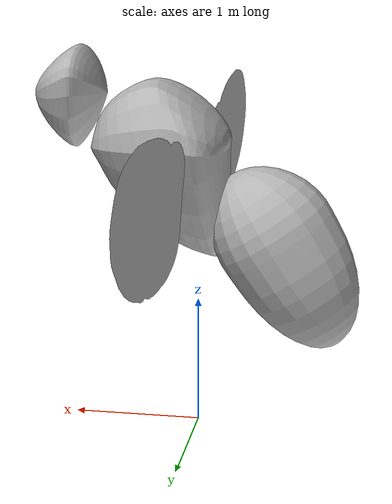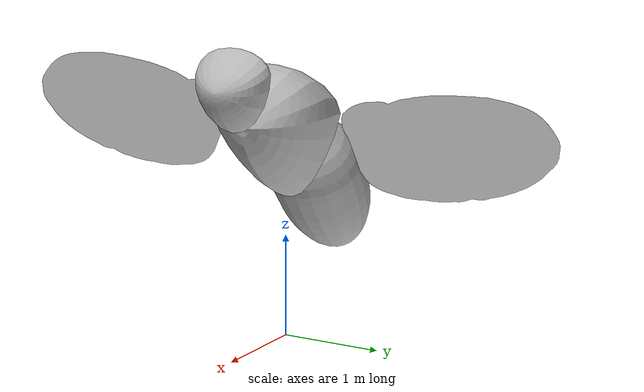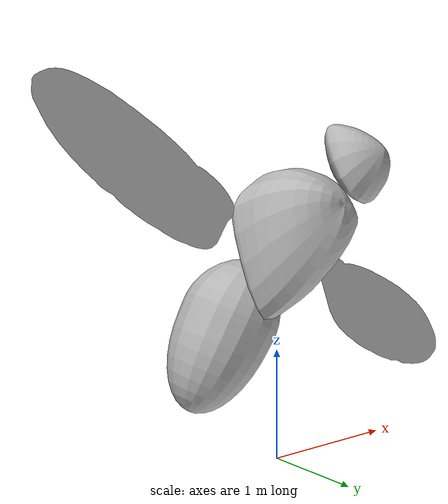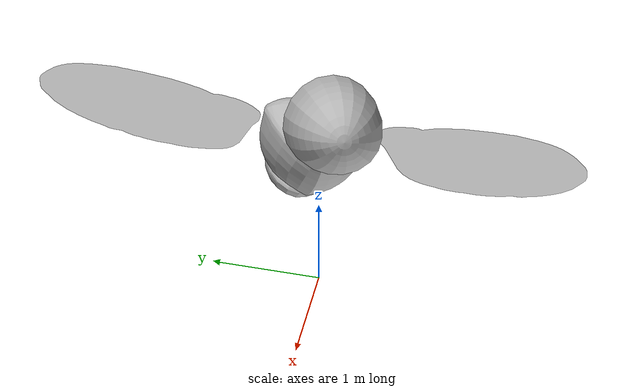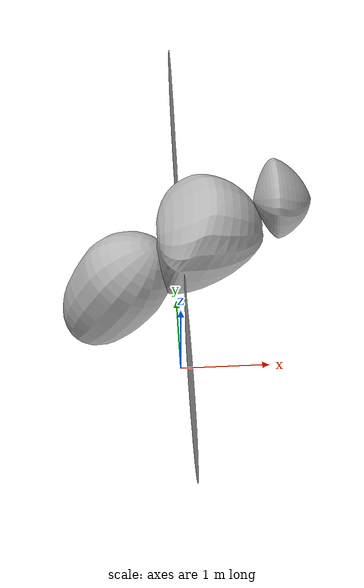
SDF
<?xml version='1.0'?>
<sdf version="1.4">
	<model name="my_model">
		<pose>0 0 2.2 0 0 0</pose>
		<static>true</static>

		<!-- Static body segments -->

		<link name="thorax">
			<pose>0 0 0 0 0 0</pose>
			<collision name="collision">
				<geometry>
					<mesh>
						<uri>model://thorax.dae</uri>
					</mesh>
				</geometry>
			</collision>
			<visual name="visual">
				<geometry>
					<mesh>
						<uri>model://thorax.dae</uri>
					</mesh>
				</geometry>
			</visual>
		</link>

		<link name="head">
			<pose>0.7 0 0.4 0 0 0</pose>
			<collision name="collision">
				<geometry>
					<mesh>
						<uri>model://head.dae</uri>
					</mesh>
				</geometry>
			</collision>
			<visual name="visual">
				<geometry>
					<mesh>
						<uri>model://head.dae</uri>
					</mesh>
				</geometry>
			</visual>
		</link>

		<link name="abdomen">
			<pose>-0.25 0 -0.2 0 -1 0</pose>
			<collision name="collision">
				<geometry>
					<mesh>
						<uri>model://abdomen.dae</uri>
					</mesh>
				</geometry>
			</collision>
			<visual name="visual">
				<geometry>
					<mesh>
						<uri>model://abdomen.dae</uri>
					</mesh>
				</geometry>
			</visual>
		</link>

		<joint name="neck" type="fixed">
			<parent>thorax</parent>
            <child>head</child>
        </joint>

		<joint name="waist" type="fixed">
			<parent>thorax</parent>
            <child>abdomen</child>
        </joint>

		<!-- Wings and hinges -->

		<link name="wingL">
			<pose>0 0.6 0 0 -1.57 0</pose>
			<collision name="collision">
				<geometry>
					<mesh>
						<uri>model://wingL.dae</uri>
					</mesh>
				</geometry>
			</collision>
			<visual name="visual">
				<geometry>
					<mesh>
						<uri>model://wingL.dae</uri>
					</mesh>
				</geometry>
			</visual>
			<inertial>
				<mass>0.0001</mass>
				<inertia>
					<ixx>0</ixx>
					<ixy>0</ixy>
					<ixz>0</ixz>
					<iyy>0</iyy>
					<iyz>0</iyz>
					<izz>0</izz>
				</inertia>
			</inertial>
		</link>

		<link name="wingR">
			<pose>0 -0.6 0 0 -1.57 0</pose>
			<collision name="collision">
				<geometry>
					<mesh>
						<uri>model://wingR.dae</uri>
					</mesh>
				</geometry>
			</collision>
			<visual name="visual">
				<geometry>
					<mesh>
						<uri>model://wingR.dae</uri>
					</mesh>
				</geometry>
			</visual>
			<inertial>
				<mass>0.0001</mass>
				<inertia>
					<ixx>0</ixx>
					<ixy>0</ixy>
					<ixz>0</ixz>
					<iyy>0</iyy>
					<iyz>0</iyz>
					<izz>0</izz>
				</inertia>
			</inertial>
		</link>

		<joint name="hingeL" type="spherical">
			<parent>thorax</parent>
            <child>wingL</child>
		</joint>

		<joint name="hingeR" type="spherical">
			<parent>thorax</parent>
            <child>wingR</child>
		</joint>

	</model>
</sdf>
